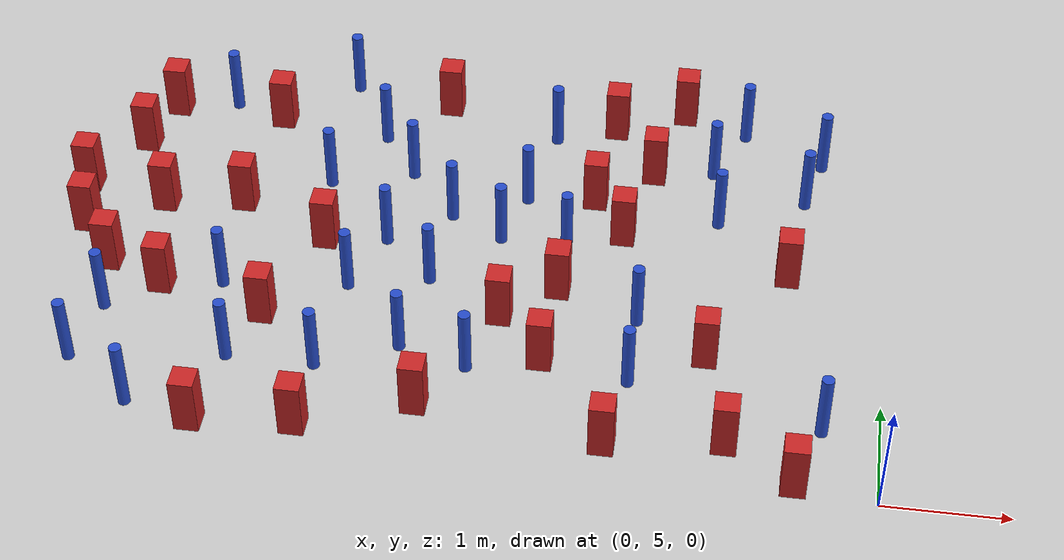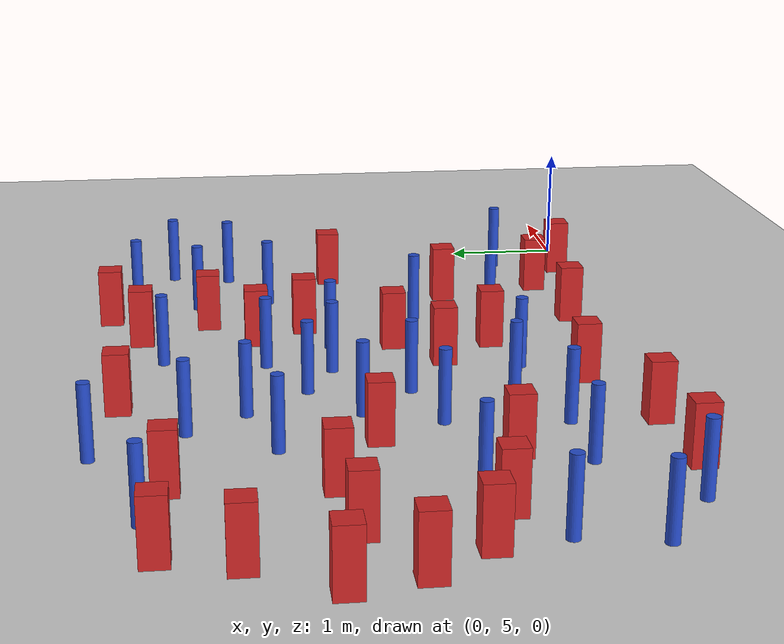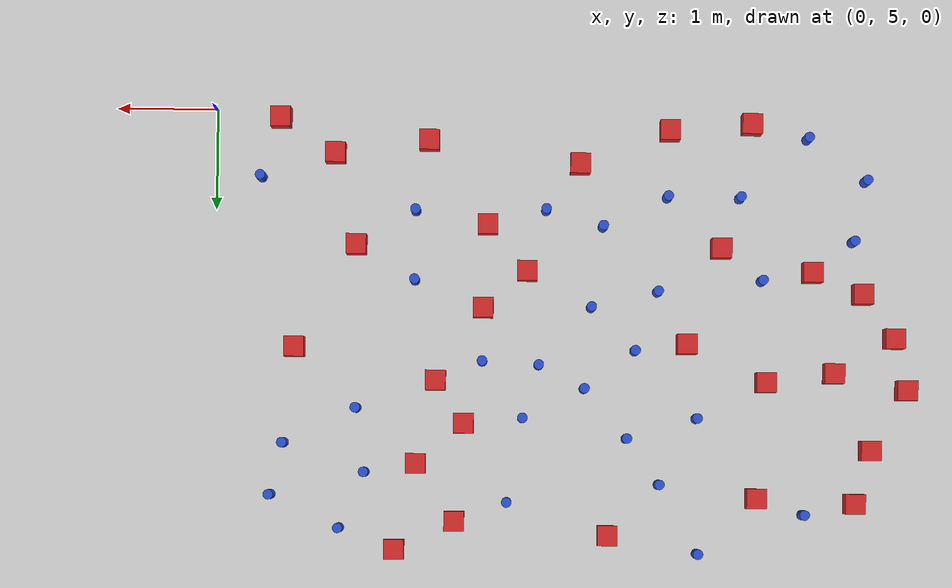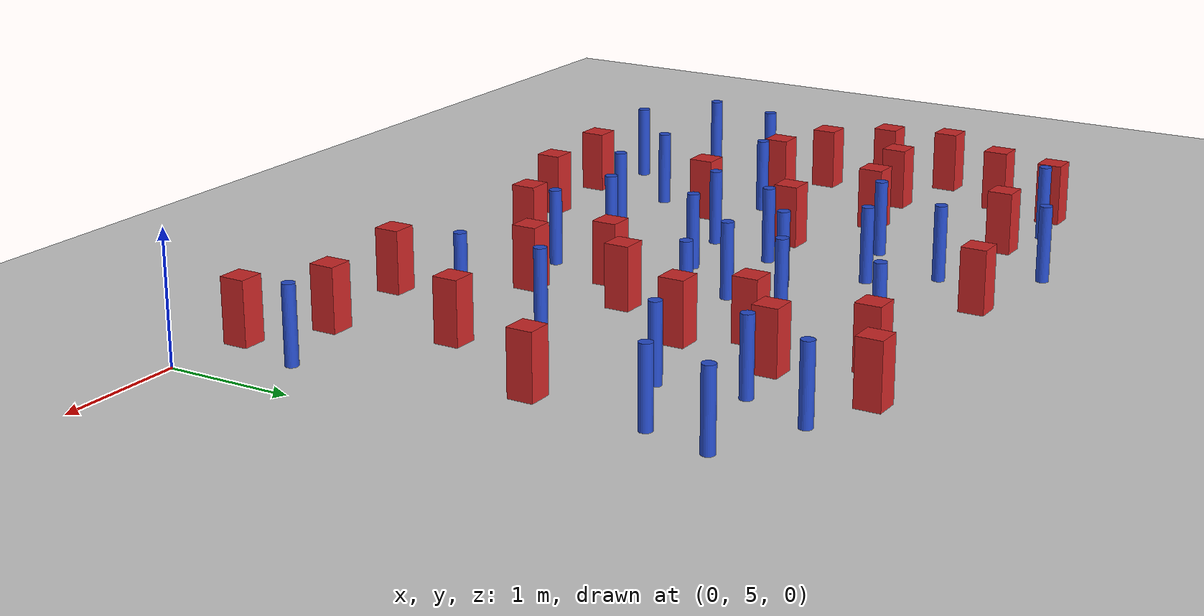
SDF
<sdf version="1.6">
 <world name="default">
  <model name="ground_plane">
   <static>1</static>
   <link name="link">
    <collision name="collision">
     <geometry><plane><normal>0 0 1</normal><size>100 100</size></plane></geometry>
     <surface><friction><ode><mu>100</mu><mu2>50</mu2></ode></friction></surface>
    </collision>
    <visual name="visual">
     <cast_shadows>0</cast_shadows>
     <geometry><plane><normal>0 0 1</normal><size>100 100</size></plane></geometry>
     <material>
      <ambient>1.0 1.0 1.0 1.0</ambient>
      <diffuse>0.8 0.8 0.8 1.0</diffuse>
      <specular>0.01 0.01 0.01 1.000000</specular>
     </material>
    </visual>
   </link>
  </model>
  <model name="square_post_obstacle0">
   <static>true</static>
   <pose>-6.41497734222 8.90161578551 8.22691968438e-08 7.22125133819e-06 -7.54495500217e-07 2.29674213826e-05</pose>
   <link name="link">
    <pose>0 0 0.25 0 -0 0</pose>
    <inertial>
     <mass>100</mass>
     <inertia>
      <ixx>0.166667</ixx>
      <ixy>0</ixy>
      <ixz>0</ixz>
      <iyy>0.166667</iyy>
      <iyz>0</iyz>
      <izz>0.166667</izz>
     </inertia>
    </inertial>
    <collision name="collision"><geometry><box><size>.2 .2 .5</size></box></geometry></collision>
    <visual name="visual">
     <geometry><box><size>.2 .2 .5</size></box></geometry>
     <material>
      <script><name>Gazebo/Red</name><uri>file://media/materials/scripts/gazebo.material</uri></script>
     </material>
    </visual>
   </link>
  </model>
  <model name="pole_obstacle1">
   <static>true</static>
   <pose>-5.92161153514 5.25024343142 2.88873142074e-08 -9.90536690842e-09 4.60219948965e-07 -1.20965994976e-07</pose>
   <link name="link">
    <pose>0 0 0.3 0 -0 0</pose>
    <inertial>
     <mass>1</mass>
     <inertia><ixx>0.145833</ixx><ixy>0</ixy><ixz>0</ixz><iyy>0.145833</iyy><iyz>0</iyz><izz>0.125</izz></inertia>
    </inertial>
    <collision name="collision">
     <geometry><cylinder><radius>0.05</radius><length>.6</length></cylinder></geometry>
    </collision>
    <visual name="visual">
     <geometry><cylinder><radius>0.05</radius><length>.6</length></cylinder></geometry>
     <material>
      <script><name>Gazebo/Blue</name><uri>file://media/materials/scripts/gazebo.material</uri></script>
     </material>
    </visual>
   </link>
  </model>
  <model name="square_post_obstacle14">
   <static>true</static>
   <pose>-6.56751136716 8.36806313331 8.22691968438e-08 7.22125133819e-06 -7.54495500217e-07 2.29674213826e-05</pose>
   <link name="link">
    <pose>0 0 0.25 0 -0 0</pose>
    <inertial>
     <mass>100</mass>
     <inertia>
      <ixx>0.166667</ixx>
      <ixy>0</ixy>
      <ixz>0</ixz>
      <iyy>0.166667</iyy>
      <iyz>0</iyz>
      <izz>0.166667</izz>
     </inertia>
    </inertial>
    <collision name="collision"><geometry><box><size>.2 .2 .5</size></box></geometry></collision>
    <visual name="visual">
     <geometry><box><size>.2 .2 .5</size></box></geometry>
     <material>
      <script><name>Gazebo/Red</name><uri>file://media/materials/scripts/gazebo.material</uri></script>
     </material>
    </visual>
   </link>
  </model>
  <model name="pole_obstacle12">
   <static>true</static>
   <pose>-4.45807424097 8.7269577756 2.88873142074e-08 -9.9053668967e-09 4.60219948993e-07 -1.20965994957e-07</pose>
   <link name="link">
    <pose>0 0 0.3 0 -0 0</pose>
    <inertial>
     <mass>1</mass>
     <inertia><ixx>0.145833</ixx><ixy>0</ixy><ixz>0</ixz><iyy>0.145833</iyy><iyz>0</iyz><izz>0.125</izz></inertia>
    </inertial>
    <collision name="collision">
     <geometry><cylinder><radius>0.05</radius><length>.6</length></cylinder></geometry>
    </collision>
    <visual name="visual">
     <geometry><cylinder><radius>0.05</radius><length>.6</length></cylinder></geometry>
     <material>
      <script><name>Gazebo/Blue</name><uri>file://media/materials/scripts/gazebo.material</uri></script>
     </material>
    </visual>
   </link>
  </model>
  <model name="square_post_obstacle25">
   <static>true</static>
   <pose>-2.13570631408 5.30018820775 8.22691968438e-08 7.2212513382e-06 -7.54495500217e-07 2.29674213826e-05</pose>
   <link name="link">
    <pose>0 0 0.25 0 -0 0</pose>
    <inertial>
     <mass>100</mass>
     <inertia>
      <ixx>0.166667</ixx>
      <ixy>0</ixy>
      <ixz>0</ixz>
      <iyy>0.166667</iyy>
      <iyz>0</iyz>
      <izz>0.166667</izz>
     </inertia>
    </inertial>
    <collision name="collision"><geometry><box><size>.2 .2 .5</size></box></geometry></collision>
    <visual name="visual">
     <geometry><box><size>.2 .2 .5</size></box></geometry>
     <material>
      <script><name>Gazebo/Red</name><uri>file://media/materials/scripts/gazebo.material</uri></script>
     </material>
    </visual>
   </link>
  </model>
  <model name="square_post_obstacle27">
   <static>true</static>
   <pose>-2.02643398893 8.5347150941 8.22691968438e-08 7.22125133819e-06 -7.54495500217e-07 2.29674213826e-05</pose>
   <link name="link">
    <pose>0 0 0.25 0 -0 0</pose>
    <inertial>
     <mass>100</mass>
     <inertia>
      <ixx>0.166667</ixx>
      <ixy>0</ixy>
      <ixz>0</ixz>
      <iyy>0.166667</iyy>
      <iyz>0</iyz>
      <izz>0.166667</izz>
     </inertia>
    </inertial>
    <collision name="collision"><geometry><box><size>.2 .2 .5</size></box></geometry></collision>
    <visual name="visual">
     <geometry><box><size>.2 .2 .5</size></box></geometry>
     <material>
      <script><name>Gazebo/Red</name><uri>file://media/materials/scripts/gazebo.material</uri></script>
     </material>
    </visual>
   </link>
  </model>
  <model name="square_post_obstacle46">
   <static>true</static>
   <pose>-6.48374985528 6.80467807108 8.22691968438e-08 7.2212513382e-06 -7.54495500217e-07 2.29674213826e-05</pose>
   <link name="link">
    <pose>0 0 0.25 0 -0 0</pose>
    <inertial>
     <mass>100</mass>
     <inertia>
      <ixx>0.166667</ixx>
      <ixy>0</ixy>
      <ixz>0</ixz>
      <iyy>0.166667</iyy>
      <iyz>0</iyz>
      <izz>0.166667</izz>
     </inertia>
    </inertial>
    <collision name="collision"><geometry><box><size>.2 .2 .5</size></box></geometry></collision>
    <visual name="visual">
     <geometry><box><size>.2 .2 .5</size></box></geometry>
     <material>
      <script><name>Gazebo/Red</name><uri>file://media/materials/scripts/gazebo.material</uri></script>
     </material>
    </visual>
   </link>
  </model>
  <model name="pole_obstacle47">
   <static>true</static>
   <pose>-4.13152809237 8.26903307791 2.88873142074e-08 -9.9053668967e-09 4.60219948993e-07 -1.20965994957e-07</pose>
   <link name="link">
    <pose>0 0 0.3 0 -0 0</pose>
    <inertial>
     <mass>1</mass>
     <inertia><ixx>0.145833</ixx><ixy>0</ixy><ixz>0</ixz><iyy>0.145833</iyy><iyz>0</iyz><izz>0.125</izz></inertia>
    </inertial>
    <collision name="collision">
     <geometry><cylinder><radius>0.05</radius><length>.6</length></cylinder></geometry>
    </collision>
    <visual name="visual">
     <geometry><cylinder><radius>0.05</radius><length>.6</length></cylinder></geometry>
     <material>
      <script><name>Gazebo/Blue</name><uri>file://media/materials/scripts/gazebo.material</uri></script>
     </material>
    </visual>
   </link>
  </model>
  <model name="pole_obstacle48">
   <static>true</static>
   <pose>-1.51155484429 8.62536286527 2.88873142074e-08 -9.90536690474e-09 4.60219948974e-07 -1.2096599497e-07</pose>
   <link name="link">
    <pose>0 0 0.3 0 -0 0</pose>
    <inertial>
     <mass>1</mass>
     <inertia><ixx>0.145833</ixx><ixy>0</ixy><ixz>0</ixz><iyy>0.145833</iyy><iyz>0</iyz><izz>0.125</izz></inertia>
    </inertial>
    <collision name="collision">
     <geometry><cylinder><radius>0.05</radius><length>.6</length></cylinder></geometry>
    </collision>
    <visual name="visual">
     <geometry><cylinder><radius>0.05</radius><length>.6</length></cylinder></geometry>
     <material>
      <script><name>Gazebo/Blue</name><uri>file://media/materials/scripts/gazebo.material</uri></script>
     </material>
    </visual>
   </link>
  </model>
  <model name="pole_obstacle52">
   <static>true</static>
   <pose>-3.88116783742 6.14662594415 2.88873142074e-08 -9.90536689859e-09 4.60219948989e-07 -1.20965994961e-07</pose>
   <link name="link">
    <pose>0 0 0.3 0 -0 0</pose>
    <inertial>
     <mass>1</mass>
     <inertia><ixx>0.145833</ixx><ixy>0</ixy><ixz>0</ixz><iyy>0.145833</iyy><iyz>0</iyz><izz>0.125</izz></inertia>
    </inertial>
    <collision name="collision">
     <geometry><cylinder><radius>0.05</radius><length>.6</length></cylinder></geometry>
    </collision>
    <visual name="visual">
     <geometry><cylinder><radius>0.05</radius><length>.6</length></cylinder></geometry>
     <material>
      <script><name>Gazebo/Blue</name><uri>file://media/materials/scripts/gazebo.material</uri></script>
     </material>
    </visual>
   </link>
  </model>
  <model name="square_post_obstacle69">
   <static>true</static>
   <pose>-5.06482134498 6.35827672265 8.22691968438e-08 7.2212513382e-06 -7.54495500217e-07 2.29674213826e-05</pose>
   <link name="link">
    <pose>0 0 0.25 0 -0 0</pose>
    <inertial>
     <mass>100</mass>
     <inertia>
      <ixx>0.166667</ixx>
      <ixy>0</ixy>
      <ixz>0</ixz>
      <iyy>0.166667</iyy>
      <iyz>0</iyz>
      <izz>0.166667</izz>
     </inertia>
    </inertial>
    <collision name="collision"><geometry><box><size>.2 .2 .5</size></box></geometry></collision>
    <visual name="visual">
     <geometry><box><size>.2 .2 .5</size></box></geometry>
     <material>
      <script><name>Gazebo/Red</name><uri>file://media/materials/scripts/gazebo.material</uri></script>
     </material>
    </visual>
   </link>
  </model>
  <model name="square_post_obstacle74">
   <static>true</static>
   <pose>-4.54233070135 5.18103222853 8.22691968438e-08 7.2212513382e-06 -7.54495500217e-07 2.29674213826e-05</pose>
   <link name="link">
    <pose>0 0 0.25 0 -0 0</pose>
    <inertial>
     <mass>100</mass>
     <inertia>
      <ixx>0.166667</ixx>
      <ixy>0</ixy>
      <ixz>0</ixz>
      <iyy>0.166667</iyy>
      <iyz>0</iyz>
      <izz>0.166667</izz>
     </inertia>
    </inertial>
    <collision name="collision"><geometry><box><size>.2 .2 .5</size></box></geometry></collision>
    <visual name="visual">
     <geometry><box><size>.2 .2 .5</size></box></geometry>
     <material>
      <script><name>Gazebo/Red</name><uri>file://media/materials/scripts/gazebo.material</uri></script>
     </material>
    </visual>
   </link>
  </model>
  <model name="pole_obstacle75">
   <static>true</static>
   <pose>-3.08991089407 8.07179504398 2.88873142074e-08 -9.90536692318e-09 4.6021994893e-07 -1.20965994988e-07</pose>
   <link name="link">
    <pose>0 0 0.3 0 -0 0</pose>
    <inertial>
     <mass>1</mass>
     <inertia><ixx>0.145833</ixx><ixy>0</ixy><ixz>0</ixz><iyy>0.145833</iyy><iyz>0</iyz><izz>0.125</izz></inertia>
    </inertial>
    <collision name="collision">
     <geometry><cylinder><radius>0.05</radius><length>.6</length></cylinder></geometry>
    </collision>
    <visual name="visual">
     <geometry><cylinder><radius>0.05</radius><length>.6</length></cylinder></geometry>
     <material>
      <script><name>Gazebo/Blue</name><uri>file://media/materials/scripts/gazebo.material</uri></script>
     </material>
    </visual>
   </link>
  </model>
  <model name="pole_obstacle96">
   <static>true</static>
   <pose>-2.00245177859 6.69786744211 2.88873142074e-08 -9.90536689575e-09 4.60219948995e-07 -1.20965994956e-07</pose>
   <link name="link">
    <pose>0 0 0.3 0 -0 0</pose>
    <inertial>
     <mass>1</mass>
     <inertia><ixx>0.145833</ixx><ixy>0</ixy><ixz>0</ixz><iyy>0.145833</iyy><iyz>0</iyz><izz>0.125</izz></inertia>
    </inertial>
    <collision name="collision">
     <geometry><cylinder><radius>0.05</radius><length>.6</length></cylinder></geometry>
    </collision>
    <visual name="visual">
     <geometry><cylinder><radius>0.05</radius><length>.6</length></cylinder></geometry>
     <material>
      <script><name>Gazebo/Blue</name><uri>file://media/materials/scripts/gazebo.material</uri></script>
     </material>
    </visual>
   </link>
  </model>
  <model name="square_post_obstacle85">
   <static>true</static>
   <pose>-4.72837446755 7.31870942311 8.22691968438e-08 7.22125133819e-06 -7.54495500217e-07 2.29674213826e-05</pose>
   <link name="link">
    <pose>0 0 0.25 0 -0 0</pose>
    <inertial>
     <mass>100</mass>
     <inertia>
      <ixx>0.166667</ixx>
      <ixy>0</ixy>
      <ixz>0</ixz>
      <iyy>0.166667</iyy>
      <iyz>0</iyz>
      <izz>0.166667</izz>
     </inertia>
    </inertial>
    <collision name="collision"><geometry><box><size>.2 .2 .5</size></box></geometry></collision>
    <visual name="visual">
     <geometry><box><size>.2 .2 .5</size></box></geometry>
     <material>
      <script><name>Gazebo/Red</name><uri>file://media/materials/scripts/gazebo.material</uri></script>
     </material>
    </visual>
   </link>
  </model>
  <model name="square_post_obstacle89">
   <static>true</static>
   <pose>-1.41561155587 6.34780537872 8.22691968438e-08 7.2212513382e-06 -7.54495500217e-07 2.29674213826e-05</pose>
   <link name="link">
    <pose>0 0 0.25 0 -0 0</pose>
    <inertial>
     <mass>100</mass>
     <inertia>
      <ixx>0.166667</ixx>
      <ixy>0</ixy>
      <ixz>0</ixz>
      <iyy>0.166667</iyy>
      <iyz>0</iyz>
      <izz>0.166667</izz>
     </inertia>
    </inertial>
    <collision name="collision"><geometry><box><size>.2 .2 .5</size></box></geometry></collision>
    <visual name="visual">
     <geometry><box><size>.2 .2 .5</size></box></geometry>
     <material>
      <script><name>Gazebo/Red</name><uri>file://media/materials/scripts/gazebo.material</uri></script>
     </material>
    </visual>
   </link>
  </model>
  <model name="square_post_obstacle92">
   <static>true</static>
   <pose>-3.94660831979 9.24069231012 8.22691968438e-08 7.22125133819e-06 -7.54495500217e-07 2.29674213826e-05</pose>
   <link name="link">
    <pose>0 0 0.25 0 -0 0</pose>
    <inertial>
     <mass>100</mass>
     <inertia>
      <ixx>0.166667</ixx>
      <ixy>0</ixy>
      <ixz>0</ixz>
      <iyy>0.166667</iyy>
      <iyz>0</iyz>
      <izz>0.166667</izz>
     </inertia>
    </inertial>
    <collision name="collision"><geometry><box><size>.2 .2 .5</size></box></geometry></collision>
    <visual name="visual">
     <geometry><box><size>.2 .2 .5</size></box></geometry>
     <material>
      <script><name>Gazebo/Red</name><uri>file://media/materials/scripts/gazebo.material</uri></script>
     </material>
    </visual>
   </link>
  </model>
  <model name="pole_obstacle108">
   <static>true</static>
   <pose>-4.84731188005 9.41600901033 2.88873142074e-08 -9.9053668967e-09 4.60219948993e-07 -1.20965994957e-07</pose>
   <link name="link">
    <pose>0 0 0.3 0 -0 0</pose>
    <inertial>
     <mass>1</mass>
     <inertia><ixx>0.145833</ixx><ixy>0</ixy><ixz>0</ixz><iyy>0.145833</iyy><iyz>0</iyz><izz>0.125</izz></inertia>
    </inertial>
    <collision name="collision">
     <geometry><cylinder><radius>0.05</radius><length>.6</length></cylinder></geometry>
    </collision>
    <visual name="visual">
     <geometry><cylinder><radius>0.05</radius><length>.6</length></cylinder></geometry>
     <material>
      <script><name>Gazebo/Blue</name><uri>file://media/materials/scripts/gazebo.material</uri></script>
     </material>
    </visual>
   </link>
  </model>
  <model name="pole_obstacle119">
   <static>true</static>
   <pose>-2.68306712905 7.50649575428 2.88873142074e-08 -9.90536689859e-09 4.60219948989e-07 -1.20965994961e-07</pose>
   <link name="link">
    <pose>0 0 0.3 0 -0 0</pose>
    <inertial>
     <mass>1</mass>
     <inertia><ixx>0.145833</ixx><ixy>0</ixy><ixz>0</ixz><iyy>0.145833</iyy><iyz>0</iyz><izz>0.125</izz></inertia>
    </inertial>
    <collision name="collision">
     <geometry><cylinder><radius>0.05</radius><length>.6</length></cylinder></geometry>
    </collision>
    <visual name="visual">
     <geometry><cylinder><radius>0.05</radius><length>.6</length></cylinder></geometry>
     <material>
      <script><name>Gazebo/Blue</name><uri>file://media/materials/scripts/gazebo.material</uri></script>
     </material>
    </visual>
   </link>
  </model>
  <model name="square_post_obstacle109">
   <static>true</static>
   <pose>-2.7290217394 6.13669699167 8.22691968438e-08 7.2212513382e-06 -7.54495500217e-07 2.29674213826e-05</pose>
   <link name="link">
    <pose>0 0 0.25 0 -0 0</pose>
    <inertial>
     <mass>100</mass>
     <inertia>
      <ixx>0.166667</ixx>
      <ixy>0</ixy>
      <ixz>0</ixz>
      <iyy>0.166667</iyy>
      <iyz>0</iyz>
      <izz>0.166667</izz>
     </inertia>
    </inertial>
    <collision name="collision"><geometry><box><size>.2 .2 .5</size></box></geometry></collision>
    <visual name="visual">
     <geometry><box><size>.2 .2 .5</size></box></geometry>
     <material>
      <script><name>Gazebo/Red</name><uri>file://media/materials/scripts/gazebo.material</uri></script>
     </material>
    </visual>
   </link>
  </model>
  <model name="pole_obstacle127">
   <static>true</static>
   <pose>-4.2100235513 7.38892718404 2.88873142074e-08 -9.90536690842e-09 4.60219948965e-07 -1.20965994976e-07</pose>
   <link name="link">
    <pose>0 0 0.3 0 -0 0</pose>
    <inertial>
     <mass>1</mass>
     <inertia><ixx>0.145833</ixx><ixy>0</ixy><ixz>0</ixz><iyy>0.145833</iyy><iyz>0</iyz><izz>0.125</izz></inertia>
    </inertial>
    <collision name="collision">
     <geometry><cylinder><radius>0.05</radius><length>.6</length></cylinder></geometry>
    </collision>
    <visual name="visual">
     <geometry><cylinder><radius>0.05</radius><length>.6</length></cylinder></geometry>
     <material>
      <script><name>Gazebo/Blue</name><uri>file://media/materials/scripts/gazebo.material</uri></script>
     </material>
    </visual>
   </link>
  </model>
  <model name="pole_obstacle129">
   <static>true</static>
   <pose>-3.31095278197 5.9853812913 2.88873142074e-08 -9.90536689859e-09 4.60219948989e-07 -1.20965994961e-07</pose>
   <link name="link">
    <pose>0 0 0.3 0 -0 0</pose>
    <inertial>
     <mass>1</mass>
     <inertia><ixx>0.145833</ixx><ixy>0</ixy><ixz>0</ixz><iyy>0.145833</iyy><iyz>0</iyz><izz>0.125</izz></inertia>
    </inertial>
    <collision name="collision">
     <geometry><cylinder><radius>0.05</radius><length>.6</length></cylinder></geometry>
    </collision>
    <visual name="visual">
     <geometry><cylinder><radius>0.05</radius><length>.6</length></cylinder></geometry>
     <material>
      <script><name>Gazebo/Blue</name><uri>file://media/materials/scripts/gazebo.material</uri></script>
     </material>
    </visual>
   </link>
  </model>
  <model name="pole_obstacle133">
   <static>true</static>
   <pose>-1.42323101226 7.98344786792 2.88873142074e-08 -9.9053669006e-09 4.60219948984e-07 -1.20965994963e-07</pose>
   <link name="link">
    <pose>0 0 0.3 0 -0 0</pose>
    <inertial>
     <mass>1</mass>
     <inertia><ixx>0.145833</ixx><ixy>0</ixy><ixz>0</ixz><iyy>0.145833</iyy><iyz>0</iyz><izz>0.125</izz></inertia>
    </inertial>
    <collision name="collision">
     <geometry><cylinder><radius>0.05</radius><length>.6</length></cylinder></geometry>
    </collision>
    <visual name="visual">
     <geometry><cylinder><radius>0.05</radius><length>.6</length></cylinder></geometry>
     <material>
      <script><name>Gazebo/Blue</name><uri>file://media/materials/scripts/gazebo.material</uri></script>
     </material>
    </visual>
   </link>
  </model>
  <model name="pole_obstacle139">
   <static>true</static>
   <pose>-0.696461756304 8.3374881769 2.88873142074e-08 -9.90536690779e-09 4.60219948967e-07 -1.20965994975e-07</pose>
   <link name="link">
    <pose>0 0 0.3 0 -0 0</pose>
    <inertial>
     <mass>1</mass>
     <inertia><ixx>0.145833</ixx><ixy>0</ixy><ixz>0</ixz><iyy>0.145833</iyy><iyz>0</iyz><izz>0.125</izz></inertia>
    </inertial>
    <collision name="collision">
     <geometry><cylinder><radius>0.05</radius><length>.6</length></cylinder></geometry>
    </collision>
    <visual name="visual">
     <geometry><cylinder><radius>0.05</radius><length>.6</length></cylinder></geometry>
     <material>
      <script><name>Gazebo/Blue</name><uri>file://media/materials/scripts/gazebo.material</uri></script>
     </material>
    </visual>
   </link>
  </model>
  <model name="square_post_obstacle124">
   <static>true</static>
   <pose>-3.64713187773 5.52204806185 8.22691968438e-08 7.2212513382e-06 -7.54495500217e-07 2.29674213826e-05</pose>
   <link name="link">
    <pose>0 0 0.25 0 -0 0</pose>
    <inertial>
     <mass>100</mass>
     <inertia>
      <ixx>0.166667</ixx>
      <ixy>0</ixy>
      <ixz>0</ixz>
      <iyy>0.166667</iyy>
      <iyz>0</iyz>
      <izz>0.166667</izz>
     </inertia>
    </inertial>
    <collision name="collision"><geometry><box><size>.2 .2 .5</size></box></geometry></collision>
    <visual name="visual">
     <geometry><box><size>.2 .2 .5</size></box></geometry>
     <material>
      <script><name>Gazebo/Red</name><uri>file://media/materials/scripts/gazebo.material</uri></script>
     </material>
    </visual>
   </link>
  </model>
  <model name="pole_obstacle140">
   <static>true</static>
   <pose>-1.26054191409 9.18556717165 2.88873142074e-08 -9.90536690474e-09 4.60219948974e-07 -1.2096599497e-07</pose>
   <link name="link">
    <pose>0 0 0.3 0 -0 0</pose>
    <inertial>
     <mass>1</mass>
     <inertia><ixx>0.145833</ixx><ixy>0</ixy><ixz>0</ixz><iyy>0.145833</iyy><iyz>0</iyz><izz>0.125</izz></inertia>
    </inertial>
    <collision name="collision">
     <geometry><cylinder><radius>0.05</radius><length>.6</length></cylinder></geometry>
    </collision>
    <visual name="visual">
     <geometry><cylinder><radius>0.05</radius><length>.6</length></cylinder></geometry>
     <material>
      <script><name>Gazebo/Blue</name><uri>file://media/materials/scripts/gazebo.material</uri></script>
     </material>
    </visual>
   </link>
  </model>
  <model name="square_post_obstacle126">
   <static>true</static>
   <pose>-6.92747841566 7.7635830181 8.22691968438e-08 7.22125133819e-06 -7.54495500217e-07 2.29674213826e-05</pose>
   <link name="link">
    <pose>0 0 0.25 0 -0 0</pose>
    <inertial>
     <mass>100</mass>
     <inertia>
      <ixx>0.166667</ixx>
      <ixy>0</ixy>
      <ixz>0</ixz>
      <iyy>0.166667</iyy>
      <iyz>0</iyz>
      <izz>0.166667</izz>
     </inertia>
    </inertial>
    <collision name="collision"><geometry><box><size>.2 .2 .5</size></box></geometry></collision>
    <visual name="visual">
     <geometry><box><size>.2 .2 .5</size></box></geometry>
     <material>
      <script><name>Gazebo/Red</name><uri>file://media/materials/scripts/gazebo.material</uri></script>
     </material>
    </visual>
   </link>
  </model>
  <model name="square_post_obstacle128">
   <static>true</static>
   <pose>-5.52197983685 7.69563234624 8.22691968438e-08 7.2212513382e-06 -7.54495500217e-07 2.29674213826e-05</pose>
   <link name="link">
    <pose>0 0 0.25 0 -0 0</pose>
    <inertial>
     <mass>100</mass>
     <inertia>
      <ixx>0.166667</ixx>
      <ixy>0</ixy>
      <ixz>0</ixz>
      <iyy>0.166667</iyy>
      <iyz>0</iyz>
      <izz>0.166667</izz>
     </inertia>
    </inertial>
    <collision name="collision"><geometry><box><size>.2 .2 .5</size></box></geometry></collision>
    <visual name="visual">
     <geometry><box><size>.2 .2 .5</size></box></geometry>
     <material>
      <script><name>Gazebo/Red</name><uri>file://media/materials/scripts/gazebo.material</uri></script>
     </material>
    </visual>
   </link>
  </model>
  <model name="pole_obstacle142">
   <static>true</static>
   <pose>-3.70463874815 7.77255088657 2.88873142074e-08 -9.90536692062e-09 4.60219948937e-07 -1.20965994985e-07</pose>
   <link name="link">
    <pose>0 0 0.3 0 -0 0</pose>
    <inertial>
     <mass>1</mass>
     <inertia><ixx>0.145833</ixx><ixy>0</ixy><ixz>0</ixz><iyy>0.145833</iyy><iyz>0</iyz><izz>0.125</izz></inertia>
    </inertial>
    <collision name="collision">
     <geometry><cylinder><radius>0.05</radius><length>.6</length></cylinder></geometry>
    </collision>
    <visual name="visual">
     <geometry><cylinder><radius>0.05</radius><length>.6</length></cylinder></geometry>
     <material>
      <script><name>Gazebo/Blue</name><uri>file://media/materials/scripts/gazebo.material</uri></script>
     </material>
    </visual>
   </link>
  </model>
  <model name="square_post_obstacle131">
   <static>true</static>
   <pose>-6.19976293412 7.59924447974 8.22691968438e-08 7.22125133819e-06 -7.54495500217e-07 2.29674213826e-05</pose>
   <link name="link">
    <pose>0 0 0.25 0 -0 0</pose>
    <inertial>
     <mass>100</mass>
     <inertia>
      <ixx>0.166667</ixx>
      <ixy>0</ixy>
      <ixz>0</ixz>
      <iyy>0.166667</iyy>
      <iyz>0</iyz>
      <izz>0.166667</izz>
     </inertia>
    </inertial>
    <collision name="collision"><geometry><box><size>.2 .2 .5</size></box></geometry></collision>
    <visual name="visual">
     <geometry><box><size>.2 .2 .5</size></box></geometry>
     <material>
      <script><name>Gazebo/Red</name><uri>file://media/materials/scripts/gazebo.material</uri></script>
     </material>
    </visual>
   </link>
  </model>
  <model name="pole_obstacle143">
   <static>true</static>
   <pose>-4.43347690469 6.79524571528 2.88873142074e-08 -9.90536690842e-09 4.60219948965e-07 -1.20965994976e-07</pose>
   <link name="link">
    <pose>0 0 0.3 0 -0 0</pose>
    <inertial>
     <mass>1</mass>
     <inertia><ixx>0.145833</ixx><ixy>0</ixy><ixz>0</ixz><iyy>0.145833</iyy><iyz>0</iyz><izz>0.125</izz></inertia>
    </inertial>
    <collision name="collision">
     <geometry><cylinder><radius>0.05</radius><length>.6</length></cylinder></geometry>
    </collision>
    <visual name="visual">
     <geometry><cylinder><radius>0.05</radius><length>.6</length></cylinder></geometry>
     <material>
      <script><name>Gazebo/Blue</name><uri>file://media/materials/scripts/gazebo.material</uri></script>
     </material>
    </visual>
   </link>
  </model>
  <model name="square_post_obstacle159">
   <static>true</static>
   <pose>-1.19840548127 5.43392656789 8.22691968438e-08 7.2212513382e-06 -7.54495500217e-07 2.29674213826e-05</pose>
   <link name="link">
    <pose>0 0 0.25 0 -0 0</pose>
    <inertial>
     <mass>100</mass>
     <inertia>
      <ixx>0.166667</ixx>
      <ixy>0</ixy>
      <ixz>0</ixz>
      <iyy>0.166667</iyy>
      <iyz>0</iyz>
      <izz>0.166667</izz>
     </inertia>
    </inertial>
    <collision name="collision"><geometry><box><size>.2 .2 .5</size></box></geometry></collision>
    <visual name="visual">
     <geometry><box><size>.2 .2 .5</size></box></geometry>
     <material>
      <script><name>Gazebo/Red</name><uri>file://media/materials/scripts/gazebo.material</uri></script>
     </material>
    </visual>
   </link>
  </model>
  <model name="pole_obstacle170">
   <static>true</static>
   <pose>-2.00634680393 6.00043751819 2.88873142074e-08 -9.90536689575e-09 4.60219948995e-07 -1.20965994956e-07</pose>
   <link name="link">
    <pose>0 0 0.3 0 -0 0</pose>
    <inertial>
     <mass>1</mass>
     <inertia><ixx>0.145833</ixx><ixy>0</ixy><ixz>0</ixz><iyy>0.145833</iyy><iyz>0</iyz><izz>0.125</izz></inertia>
    </inertial>
    <collision name="collision">
     <geometry><cylinder><radius>0.05</radius><length>.6</length></cylinder></geometry>
    </collision>
    <visual name="visual">
     <geometry><cylinder><radius>0.05</radius><length>.6</length></cylinder></geometry>
     <material>
      <script><name>Gazebo/Blue</name><uri>file://media/materials/scripts/gazebo.material</uri></script>
     </material>
    </visual>
   </link>
  </model>
  <model name="pole_obstacle173">
   <static>true</static>
   <pose>-6.50709194152 5.67026155073 2.88873142074e-08 -9.90536690842e-09 4.60219948965e-07 -1.20965994976e-07</pose>
   <link name="link">
    <pose>0 0 0.3 0 -0 0</pose>
    <inertial>
     <mass>1</mass>
     <inertia><ixx>0.145833</ixx><ixy>0</ixy><ixz>0</ixz><iyy>0.145833</iyy><iyz>0</iyz><izz>0.125</izz></inertia>
    </inertial>
    <collision name="collision">
     <geometry><cylinder><radius>0.05</radius><length>.6</length></cylinder></geometry>
    </collision>
    <visual name="visual">
     <geometry><cylinder><radius>0.05</radius><length>.6</length></cylinder></geometry>
     <material>
      <script><name>Gazebo/Blue</name><uri>file://media/materials/scripts/gazebo.material</uri></script>
     </material>
    </visual>
   </link>
  </model>
  <model name="pole_obstacle175">
   <static>true</static>
   <pose>-4.52467765427 5.84647679364 2.88873142074e-08 -9.90536690842e-09 4.60219948965e-07 -1.20965994976e-07</pose>
   <link name="link">
    <pose>0 0 0.3 0 -0 0</pose>
    <inertial>
     <mass>1</mass>
     <inertia><ixx>0.145833</ixx><ixy>0</ixy><ixz>0</ixz><iyy>0.145833</iyy><iyz>0</iyz><izz>0.125</izz></inertia>
    </inertial>
    <collision name="collision">
     <geometry><cylinder><radius>0.05</radius><length>.6</length></cylinder></geometry>
    </collision>
    <visual name="visual">
     <geometry><cylinder><radius>0.05</radius><length>.6</length></cylinder></geometry>
     <material>
      <script><name>Gazebo/Blue</name><uri>file://media/materials/scripts/gazebo.material</uri></script>
     </material>
    </visual>
   </link>
  </model>
  <model name="square_post_obstacle170">
   <static>true</static>
   <pose>-0.801874392013 7.37776313156 8.22691968438e-08 7.2212513382e-06 -7.54495500217e-07 2.29674213826e-05</pose>
   <link name="link">
    <pose>0 0 0.25 0 -0 0</pose>
    <inertial>
     <mass>100</mass>
     <inertia>
      <ixx>0.166667</ixx>
      <ixy>0</ixy>
      <ixz>0</ixz>
      <iyy>0.166667</iyy>
      <iyz>0</iyz>
      <izz>0.166667</izz>
     </inertia>
    </inertial>
    <collision name="collision"><geometry><box><size>.2 .2 .5</size></box></geometry></collision>
    <visual name="visual">
     <geometry><box><size>.2 .2 .5</size></box></geometry>
     <material>
      <script><name>Gazebo/Red</name><uri>file://media/materials/scripts/gazebo.material</uri></script>
     </material>
    </visual>
   </link>
  </model>
  <model name="square_post_obstacle172">
   <static>true</static>
   <pose>-2.41529287049 9.11003678412 8.22691968438e-08 7.22125133819e-06 -7.54495500217e-07 2.29674213826e-05</pose>
   <link name="link">
    <pose>0 0 0.25 0 -0 0</pose>
    <inertial>
     <mass>100</mass>
     <inertia>
      <ixx>0.166667</ixx>
      <ixy>0</ixy>
      <ixz>0</ixz>
      <iyy>0.166667</iyy>
      <iyz>0</iyz>
      <izz>0.166667</izz>
     </inertia>
    </inertial>
    <collision name="collision"><geometry><box><size>.2 .2 .5</size></box></geometry></collision>
    <visual name="visual">
     <geometry><box><size>.2 .2 .5</size></box></geometry>
     <material>
      <script><name>Gazebo/Red</name><uri>file://media/materials/scripts/gazebo.material</uri></script>
     </material>
    </visual>
   </link>
  </model>
  <model name="pole_obstacle185">
   <static>true</static>
   <pose>-2.93769780149 8.91669198536 2.88873142074e-08 -9.90536692318e-09 4.6021994893e-07 -1.20965994988e-07</pose>
   <link name="link">
    <pose>0 0 0.3 0 -0 0</pose>
    <inertial>
     <mass>1</mass>
     <inertia><ixx>0.145833</ixx><ixy>0</ixy><ixz>0</ixz><iyy>0.145833</iyy><iyz>0</iyz><izz>0.125</izz></inertia>
    </inertial>
    <collision name="collision">
     <geometry><cylinder><radius>0.05</radius><length>.6</length></cylinder></geometry>
    </collision>
    <visual name="visual">
     <geometry><cylinder><radius>0.05</radius><length>.6</length></cylinder></geometry>
     <material>
      <script><name>Gazebo/Blue</name><uri>file://media/materials/scripts/gazebo.material</uri></script>
     </material>
    </visual>
   </link>
  </model>
  <model name="square_post_obstacle182">
   <static>true</static>
   <pose>-1.81677592771 9.3962394859 8.22691968438e-08 7.22125133819e-06 -7.54495500217e-07 2.29674213826e-05</pose>
   <link name="link">
    <pose>0 0 0.25 0 -0 0</pose>
    <inertial>
     <mass>100</mass>
     <inertia>
      <ixx>0.166667</ixx>
      <ixy>0</ixy>
      <ixz>0</ixz>
      <iyy>0.166667</iyy>
      <iyz>0</iyz>
      <izz>0.166667</izz>
     </inertia>
    </inertial>
    <collision name="collision"><geometry><box><size>.2 .2 .5</size></box></geometry></collision>
    <visual name="visual">
     <geometry><box><size>.2 .2 .5</size></box></geometry>
     <material>
      <script><name>Gazebo/Red</name><uri>file://media/materials/scripts/gazebo.material</uri></script>
     </material>
    </visual>
   </link>
  </model>
  <model name="square_post_obstacle183">
   <static>true</static>
   <pose>-2.21933054122 7.70141313216 8.22691968438e-08 7.2212513382e-06 -7.54495500217e-07 2.29674213826e-05</pose>
   <link name="link">
    <pose>0 0 0.25 0 -0 0</pose>
    <inertial>
     <mass>100</mass>
     <inertia>
      <ixx>0.166667</ixx>
      <ixy>0</ixy>
      <ixz>0</ixz>
      <iyy>0.166667</iyy>
      <iyz>0</iyz>
      <izz>0.166667</izz>
     </inertia>
    </inertial>
    <collision name="collision"><geometry><box><size>.2 .2 .5</size></box></geometry></collision>
    <visual name="visual">
     <geometry><box><size>.2 .2 .5</size></box></geometry>
     <material>
      <script><name>Gazebo/Red</name><uri>file://media/materials/scripts/gazebo.material</uri></script>
     </material>
    </visual>
   </link>
  </model>
  <model name="square_post_obstacle189">
   <static>true</static>
   <pose>-5.42983237579 8.8571182896 8.22691968438e-08 7.22125133819e-06 -7.54495500217e-07 2.29674213826e-05</pose>
   <link name="link">
    <pose>0 0 0.25 0 -0 0</pose>
    <inertial>
     <mass>100</mass>
     <inertia>
      <ixx>0.166667</ixx>
      <ixy>0</ixy>
      <ixz>0</ixz>
      <iyy>0.166667</iyy>
      <iyz>0</iyz>
      <izz>0.166667</izz>
     </inertia>
    </inertial>
    <collision name="collision"><geometry><box><size>.2 .2 .5</size></box></geometry></collision>
    <visual name="visual">
     <geometry><box><size>.2 .2 .5</size></box></geometry>
     <material>
      <script><name>Gazebo/Red</name><uri>file://media/materials/scripts/gazebo.material</uri></script>
     </material>
    </visual>
   </link>
  </model>
  <model name="square_post_obstacle190">
   <static>true</static>
   <pose>-5.97841356143 6.59075660606 8.22691968438e-08 7.2212513382e-06 -7.54495500217e-07 2.29674213826e-05</pose>
   <link name="link">
    <pose>0 0 0.25 0 -0 0</pose>
    <inertial>
     <mass>100</mass>
     <inertia>
      <ixx>0.166667</ixx>
      <ixy>0</ixy>
      <ixz>0</ixz>
      <iyy>0.166667</iyy>
      <iyz>0</iyz>
      <izz>0.166667</izz>
     </inertia>
    </inertial>
    <collision name="collision"><geometry><box><size>.2 .2 .5</size></box></geometry></collision>
    <visual name="visual">
     <geometry><box><size>.2 .2 .5</size></box></geometry>
     <material>
      <script><name>Gazebo/Red</name><uri>file://media/materials/scripts/gazebo.material</uri></script>
     </material>
    </visual>
   </link>
  </model>
  <model name="square_post_obstacle192">
   <static>true</static>
   <pose>-3.12583694315 6.59844462319 8.22691968438e-08 7.2212513382e-06 -7.54495500217e-07 2.29674213826e-05</pose>
   <link name="link">
    <pose>0 0 0.25 0 -0 0</pose>
    <inertial>
     <mass>100</mass>
     <inertia>
      <ixx>0.166667</ixx>
      <ixy>0</ixy>
      <ixz>0</ixz>
      <iyy>0.166667</iyy>
      <iyz>0</iyz>
      <izz>0.166667</izz>
     </inertia>
    </inertial>
    <collision name="collision"><geometry><box><size>.2 .2 .5</size></box></geometry></collision>
    <visual name="visual">
     <geometry><box><size>.2 .2 .5</size></box></geometry>
     <material>
      <script><name>Gazebo/Red</name><uri>file://media/materials/scripts/gazebo.material</uri></script>
     </material>
    </visual>
   </link>
  </model>
  <model name="square_post_obstacle195">
   <static>true</static>
   <pose>-6.8027602313 7.24618336102 8.22691968438e-08 7.22125133819e-06 -7.54495500217e-07 2.29674213826e-05</pose>
   <link name="link">
    <pose>0 0 0.25 0 -0 0</pose>
    <inertial>
     <mass>100</mass>
     <inertia>
      <ixx>0.166667</ixx>
      <ixy>0</ixy>
      <ixz>0</ixz>
      <iyy>0.166667</iyy>
      <iyz>0</iyz>
      <izz>0.166667</izz>
     </inertia>
    </inertial>
    <collision name="collision"><geometry><box><size>.2 .2 .5</size></box></geometry></collision>
    <visual name="visual">
     <geometry><box><size>.2 .2 .5</size></box></geometry>
     <material>
      <script><name>Gazebo/Red</name><uri>file://media/materials/scripts/gazebo.material</uri></script>
     </material>
    </visual>
   </link>
  </model>
  <model name="pole_obstacle191">
   <static>true</static>
   <pose>-0.456148550841 5.6742114075 2.88873142074e-08 -9.90536689758e-09 4.60219948991e-07 -1.20965994957e-07</pose>
   <link name="link">
    <pose>0 0 0.3 0 -0 0</pose>
    <inertial>
     <mass>1</mass>
     <inertia><ixx>0.145833</ixx><ixy>0</ixy><ixz>0</ixz><iyy>0.145833</iyy><iyz>0</iyz><izz>0.125</izz></inertia>
    </inertial>
    <collision name="collision">
     <geometry><cylinder><radius>0.05</radius><length>.6</length></cylinder></geometry>
    </collision>
    <visual name="visual">
     <geometry><cylinder><radius>0.05</radius><length>.6</length></cylinder></geometry>
     <material>
      <script><name>Gazebo/Blue</name><uri>file://media/materials/scripts/gazebo.material</uri></script>
     </material>
    </visual>
   </link>
  </model>
  <model name="pole_obstacle193">
   <static>true</static>
   <pose>-5.47484161821 6.6776080034 2.88873142074e-08 -9.90536690842e-09 4.60219948965e-07 -1.20965994976e-07</pose>
   <link name="link">
    <pose>0 0 0.3 0 -0 0</pose>
    <inertial>
     <mass>1</mass>
     <inertia><ixx>0.145833</ixx><ixy>0</ixy><ixz>0</ixz><iyy>0.145833</iyy><iyz>0</iyz><izz>0.125</izz></inertia>
    </inertial>
    <collision name="collision">
     <geometry><cylinder><radius>0.05</radius><length>.6</length></cylinder></geometry>
    </collision>
    <visual name="visual">
     <geometry><cylinder><radius>0.05</radius><length>.6</length></cylinder></geometry>
     <material>
      <script><name>Gazebo/Blue</name><uri>file://media/materials/scripts/gazebo.material</uri></script>
     </material>
    </visual>
   </link>
  </model>
  <model name="pole_obstacle194">
   <static>true</static>
   <pose>-5.24917671101 5.84900707806 2.88873142074e-08 -9.90536690842e-09 4.60219948965e-07 -1.20965994976e-07</pose>
   <link name="link">
    <pose>0 0 0.3 0 -0 0</pose>
    <inertial>
     <mass>1</mass>
     <inertia><ixx>0.145833</ixx><ixy>0</ixy><ixz>0</ixz><iyy>0.145833</iyy><iyz>0</iyz><izz>0.125</izz></inertia>
    </inertial>
    <collision name="collision">
     <geometry><cylinder><radius>0.05</radius><length>.6</length></cylinder></geometry>
    </collision>
    <visual name="visual">
     <geometry><cylinder><radius>0.05</radius><length>.6</length></cylinder></geometry>
     <material>
      <script><name>Gazebo/Blue</name><uri>file://media/materials/scripts/gazebo.material</uri></script>
     </material>
    </visual>
   </link>
  </model>
  <model name="pole_obstacle196">
   <static>true</static>
   <pose>-5.90384962906 9.01694364652 2.88873142074e-08 -9.9053668967e-09 4.60219948993e-07 -1.20965994957e-07</pose>
   <link name="link">
    <pose>0 0 0.3 0 -0 0</pose>
    <inertial>
     <mass>1</mass>
     <inertia><ixx>0.145833</ixx><ixy>0</ixy><ixz>0</ixz><iyy>0.145833</iyy><iyz>0</iyz><izz>0.125</izz></inertia>
    </inertial>
    <collision name="collision">
     <geometry><cylinder><radius>0.05</radius><length>.6</length></cylinder></geometry>
    </collision>
    <visual name="visual">
     <geometry><cylinder><radius>0.05</radius><length>.6</length></cylinder></geometry>
     <material>
      <script><name>Gazebo/Blue</name><uri>file://media/materials/scripts/gazebo.material</uri></script>
     </material>
    </visual>
   </link>
  </model>
  <model name="pole_obstacle197">
   <static>true</static>
   <pose>-3.24829759076 7.53910650083 2.88873142074e-08 -9.90536689859e-09 4.60219948989e-07 -1.20965994961e-07</pose>
   <link name="link">
    <pose>0 0 0.3 0 -0 0</pose>
    <inertial>
     <mass>1</mass>
     <inertia><ixx>0.145833</ixx><ixy>0</ixy><ixz>0</ixz><iyy>0.145833</iyy><iyz>0</iyz><izz>0.125</izz></inertia>
    </inertial>
    <collision name="collision">
     <geometry><cylinder><radius>0.05</radius><length>.6</length></cylinder></geometry>
    </collision>
    <visual name="visual">
     <geometry><cylinder><radius>0.05</radius><length>.6</length></cylinder></geometry>
     <material>
      <script><name>Gazebo/Blue</name><uri>file://media/materials/scripts/gazebo.material</uri></script>
     </material>
    </visual>
   </link>
  </model>
  <model name="square_post_obstacle207">
   <static>true</static>
   <pose>-2.50255886251 8.13107039693 8.22691968438e-08 7.22125133819e-06 -7.54495500217e-07 2.29674213826e-05</pose>
   <link name="link">
    <pose>0 0 0.25 0 -0 0</pose>
    <inertial>
     <mass>100</mass>
     <inertia>
      <ixx>0.166667</ixx>
      <ixy>0</ixy>
      <ixz>0</ixz>
      <iyy>0.166667</iyy>
      <iyz>0</iyz>
      <izz>0.166667</izz>
     </inertia>
    </inertial>
    <collision name="collision"><geometry><box><size>.2 .2 .5</size></box></geometry></collision>
    <visual name="visual">
     <geometry><box><size>.2 .2 .5</size></box></geometry>
     <material>
      <script><name>Gazebo/Red</name><uri>file://media/materials/scripts/gazebo.material</uri></script>
     </material>
    </visual>
   </link>
  </model>
  <model name="square_post_obstacle214">
   <static>true</static>
   <pose>-0.649497841629 5.08330894377 8.22691968438e-08 7.2212513382e-06 -7.54495500217e-07 2.29674213826e-05</pose>
   <link name="link">
    <pose>0 0 0.25 0 -0 0</pose>
    <inertial>
     <mass>100</mass>
     <inertia>
      <ixx>0.166667</ixx>
      <ixy>0</ixy>
      <ixz>0</ixz>
      <iyy>0.166667</iyy>
      <iyz>0</iyz>
      <izz>0.166667</izz>
     </inertia>
    </inertial>
    <collision name="collision"><geometry><box><size>.2 .2 .5</size></box></geometry></collision>
    <visual name="visual">
     <geometry><box><size>.2 .2 .5</size></box></geometry>
     <material>
      <script><name>Gazebo/Red</name><uri>file://media/materials/scripts/gazebo.material</uri></script>
     </material>
    </visual>
   </link>
  </model>
  <model name="square_post_obstacle222">
   <static>true</static>
   <pose>-2.68947288293 6.97223409464 8.22691968438e-08 7.2212513382e-06 -7.54495500217e-07 2.29674213826e-05</pose>
   <link name="link">
    <pose>0 0 0.25 0 -0 0</pose>
    <inertial>
     <mass>100</mass>
     <inertia>
      <ixx>0.166667</ixx>
      <ixy>0</ixy>
      <ixz>0</ixz>
      <iyy>0.166667</iyy>
      <iyz>0</iyz>
      <izz>0.166667</izz>
     </inertia>
    </inertial>
    <collision name="collision"><geometry><box><size>.2 .2 .5</size></box></geometry></collision>
    <visual name="visual">
     <geometry><box><size>.2 .2 .5</size></box></geometry>
     <material>
      <script><name>Gazebo/Red</name><uri>file://media/materials/scripts/gazebo.material</uri></script>
     </material>
    </visual>
   </link>
  </model>
  <model name="square_post_obstacle233">
   <static>true</static>
   <pose>-5.35898382441 5.11296148695 8.22691968438e-08 7.2212513382e-06 -7.54495500217e-07 2.29674213826e-05</pose>
   <link name="link">
    <pose>0 0 0.25 0 -0 0</pose>
    <inertial>
     <mass>100</mass>
     <inertia>
      <ixx>0.166667</ixx>
      <ixy>0</ixy>
      <ixz>0</ixz>
      <iyy>0.166667</iyy>
      <iyz>0</iyz>
      <izz>0.166667</izz>
     </inertia>
    </inertial>
    <collision name="collision"><geometry><box><size>.2 .2 .5</size></box></geometry></collision>
    <visual name="visual">
     <geometry><box><size>.2 .2 .5</size></box></geometry>
     <material>
      <script><name>Gazebo/Red</name><uri>file://media/materials/scripts/gazebo.material</uri></script>
     </material>
    </visual>
   </link>
  </model>
  <model name="pole_obstacle199">
   <static>true</static>
   <pose>-3.76962999087 6.95729002041 2.88873142074e-08 -9.90536692062e-09 4.60219948937e-07 -1.20965994985e-07</pose>
   <link name="link">
    <pose>0 0 0.3 0 -0 0</pose>
    <inertial>
     <mass>1</mass>
     <inertia><ixx>0.145833</ixx><ixy>0</ixy><ixz>0</ixz><iyy>0.145833</iyy><iyz>0</iyz><izz>0.125</izz></inertia>
    </inertial>
    <collision name="collision">
     <geometry><cylinder><radius>0.05</radius><length>.6</length></cylinder></geometry>
    </collision>
    <visual name="visual">
     <geometry><cylinder><radius>0.05</radius><length>.6</length></cylinder></geometry>
     <material>
      <script><name>Gazebo/Blue</name><uri>file://media/materials/scripts/gazebo.material</uri></script>
     </material>
    </visual>
   </link>
  </model>
  <model name="pole_obstacle206">
   <static>true</static>
   <pose>-4.83172999087 8.06257002041 2.88873142074e-08 -9.9053668967e-09 4.60219948993e-07 -1.20965994957e-07</pose>
   <link name="link">
    <pose>0 0 0.3 0 -0 0</pose>
    <inertial>
     <mass>1</mass>
     <inertia><ixx>0.145833</ixx><ixy>0</ixy><ixz>0</ixz><iyy>0.145833</iyy><iyz>0</iyz><izz>0.125</izz></inertia>
    </inertial>
    <collision name="collision">
     <geometry><cylinder><radius>0.05</radius><length>.6</length></cylinder></geometry>
    </collision>
    <visual name="visual">
     <geometry><cylinder><radius>0.05</radius><length>.6</length></cylinder></geometry>
     <material>
      <script><name>Gazebo/Blue</name><uri>file://media/materials/scripts/gazebo.material</uri></script>
     </material>
    </visual>
   </link>
  </model>
  <model name="pole_obstacle209">
   <static>true</static>
   <pose>-0.568151990867 8.85774002041 2.88873142074e-08 -9.90536690779e-09 4.60219948967e-07 -1.20965994975e-07</pose>
   <link name="link">
    <pose>0 0 0.3 0 -0 0</pose>
    <inertial>
     <mass>1</mass>
     <inertia><ixx>0.145833</ixx><ixy>0</ixy><ixz>0</ixz><iyy>0.145833</iyy><iyz>0</iyz><izz>0.125</izz></inertia>
    </inertial>
    <collision name="collision">
     <geometry><cylinder><radius>0.05</radius><length>.6</length></cylinder></geometry>
    </collision>
    <visual name="visual">
     <geometry><cylinder><radius>0.05</radius><length>.6</length></cylinder></geometry>
     <material>
      <script><name>Gazebo/Blue</name><uri>file://media/materials/scripts/gazebo.material</uri></script>
     </material>
    </visual>
   </link>
  </model>
  <model name="pole_obstacle212">
   <static>true</static>
   <pose>-6.38514999087 6.27852002041 2.88873142074e-08 -9.90536690842e-09 4.60219948965e-07 -1.20965994976e-07</pose>
   <link name="link">
    <pose>0 0 0.3 0 -0 0</pose>
    <inertial>
     <mass>1</mass>
     <inertia><ixx>0.145833</ixx><ixy>0</ixy><ixz>0</ixz><iyy>0.145833</iyy><iyz>0</iyz><izz>0.125</izz></inertia>
    </inertial>
    <collision name="collision">
     <geometry><cylinder><radius>0.05</radius><length>.6</length></cylinder></geometry>
    </collision>
    <visual name="visual">
     <geometry><cylinder><radius>0.05</radius><length>.6</length></cylinder></geometry>
     <material>
      <script><name>Gazebo/Blue</name><uri>file://media/materials/scripts/gazebo.material</uri></script>
     </material>
    </visual>
   </link>
  </model>
 </world>
</sdf>
